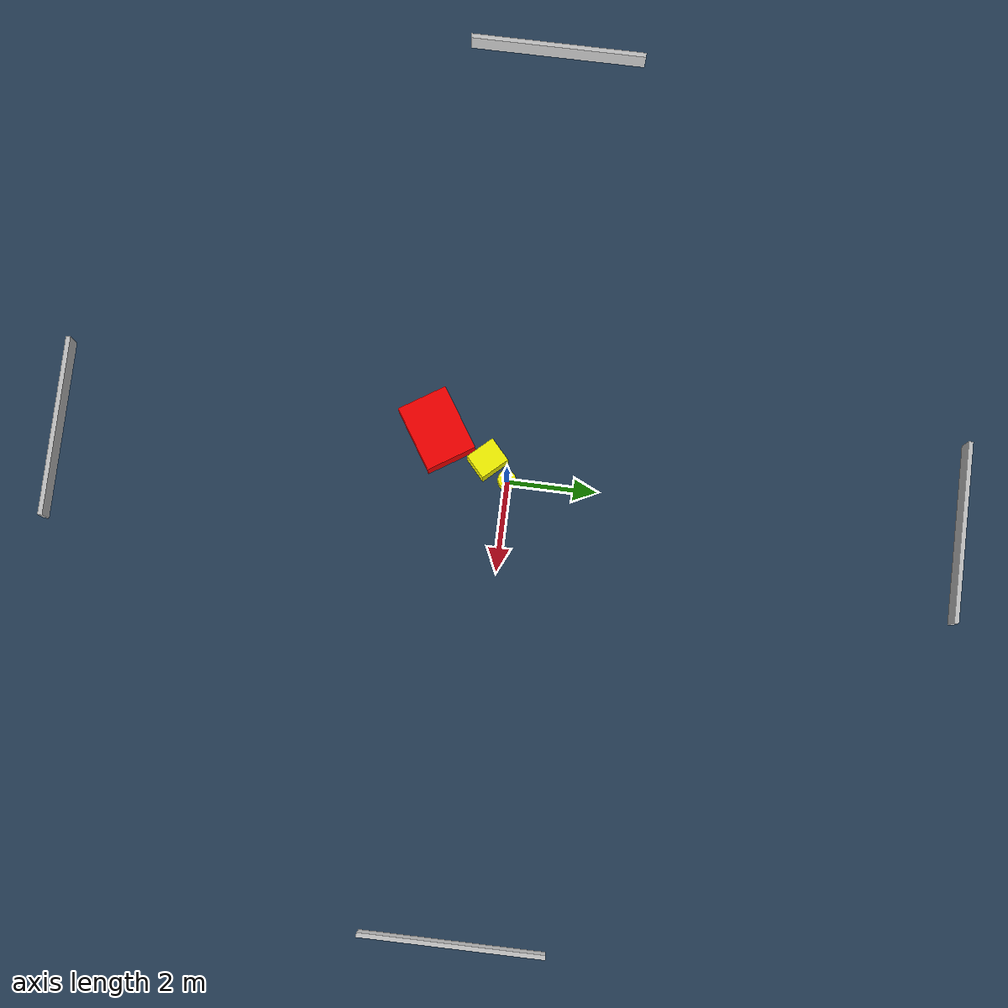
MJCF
<?xml version="1.0" ?>
<mujoco model="generated_environment">
  <option timestep="0.01" integrator="RK4" cone="elliptic"/>
  <default>
    <geom density="1"/>
  </default>
  <asset>
    <texture builtin="gradient" height="3072" name="skybox" rgb1="0.3 0.5 0.7" rgb2="0 0 0" type="skybox" width="512"/>
    <texture builtin="checker" height="300" name="groundplane" rgb1="0.2 0.3 0.4" rgb2="0.1 0.2 0.3" type="2d" width="300"/>
    <material name="groundplane" reflectance="0.2" texrepeat="5 5" texture="groundplane"/>
  </asset>
  <worldbody>
    <light dir="0 0 -1" directional="true" pos="0 0 1.5"/>
    <geom condim="3" friction="0.5 0.005 0.001" material="groundplane" name="floor" pos="0 0 0" size="0 0 0.05" type="plane"/>
    <body name="walls">
      <geom name="wall_1" condim="4" pos="-10.0 0.0 0.3" rgba="0.800000011920929 0.800000011920929 0.800000011920929 1.0" size="0.05 2.0 0.3" type="box"/>
      <geom name="wall_2" condim="4" pos="10.0 0.0 0.3" rgba="0.800000011920929 0.800000011920929 0.800000011920929 1.0" size="0.05 2.0 0.3" type="box"/>
      <geom name="wall_3" condim="4" pos="0.0 -10.0 0.3" rgba="0.800000011920929 0.800000011920929 0.800000011920929 1.0" size="2.0 0.05 0.3" type="box"/>
      <geom name="wall_4" condim="4" pos="0.0 10.0 0.3" rgba="0.800000011920929 0.800000011920929 0.800000011920929 1.0" size="2.0 0.05 0.3" type="box"/>
    </body>
    <body name="robot">
      <joint name="joint_x" type="slide" pos="0 0 0" axis="1 0 0"/>
      <joint name="joint_y" type="slide" pos="0 0 0" axis="0 1 0"/>
      <geom name="robot" type="cylinder" pos="0.0 0.0 0.2" size="0.2 0.2 0.0" mass="5.0" friction="1.0 0.005 0.0001" condim="4" rgba="1.0 1.0 0.0 1.0"/>
    </body>
    <body name="obstacle_1_movable">
      <geom name="obstacle_1_movable" condim="4" pos="-0.3901567507568652 -0.47290912250501715 0.3" euler="0 0 222.1853603055785" friction="0.0 0.005 0.001" rgba="1.0 1.0 0.0 1.0" size="0.2920910831033207 0.3434985664174929 0.3" type="box" mass="0.1"/>
      <joint type="free"/>
    </body>
    <body name="obstacle_2_static">
      <geom name="obstacle_2_static" condim="4" pos="-0.923216968282082 -1.662599790802687 0.3" euler="0 0 122.51642683769445" friction="0.0 0.005 0.001" rgba="1.0 0.0 0.0 1.0" size="0.5756528659593791 0.7544584759910167 0.3" type="box"/>
    </body>
  </worldbody>
  <actuator>
    <motor name="actuator_x" joint="joint_x" gear="1" ctrlrange="-1 1"/>
    <motor name="actuator_y" joint="joint_y" gear="1" ctrlrange="-1 1"/>
  </actuator>
</mujoco>
